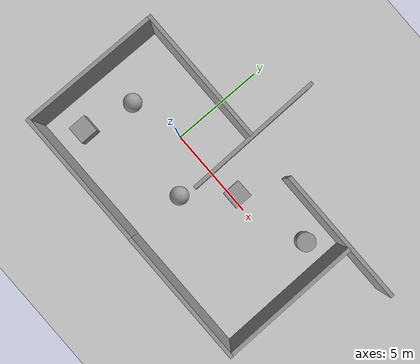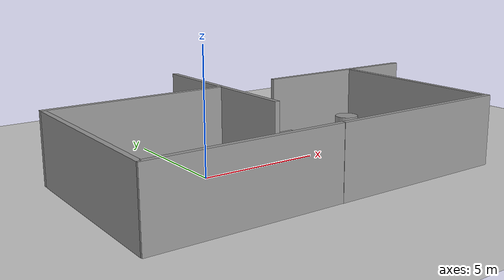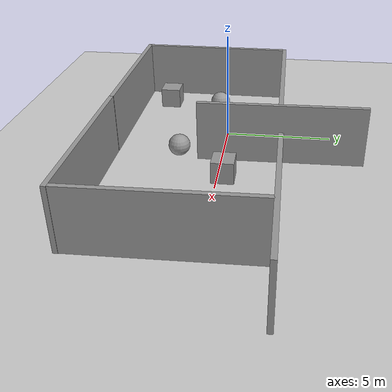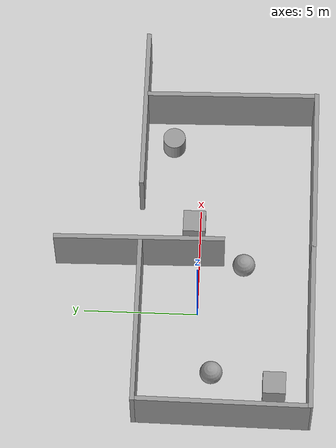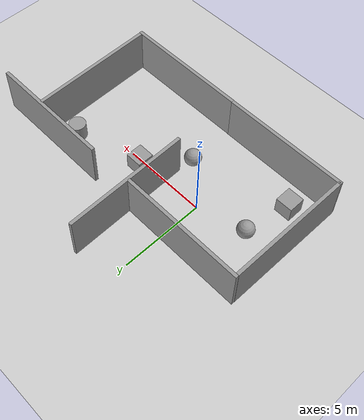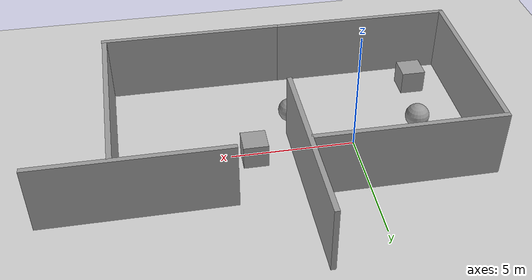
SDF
<sdf version="1.6">
 <world name="default">
  <light name="sun" type="directional">
   <pose>0 0 10 0 -0 0</pose>
   <diffuse>0.8 0.8 0.8 1</diffuse>
   <specular>0.2 0.2 0.2 1</specular>
   <attenuation>
    <range>1000</range>
    <constant>0.9</constant>
    <linear>0.01</linear>
    <quadratic>0.001</quadratic>
   </attenuation>
   <direction>-0.5 0.1 -0.9</direction>
  </light>
  <model name="ground_plane">
   <static>1</static>
   <link name="link">
    <collision name="collision">
     <geometry><plane><normal>0 0 1</normal><size>100 100</size></plane></geometry>
     <surface><friction><ode><mu>100</mu><mu2>50</mu2></ode></friction></surface>
    </collision>
    <visual name="visual">
     <cast_shadows>0</cast_shadows>
     <geometry><plane><normal>0 0 1</normal><size>100 100</size></plane></geometry>
     <material>
      <script><uri>file://media/materials/scripts/gazebo.material</uri><name>Gazebo/Grey</name></script>
     </material>
    </visual>
   </link>
  </model>
  <gravity>0 0 -9.8</gravity>
  <magnetic_field>6e-06 2.3e-05 -4.2e-05</magnetic_field>
  <atmosphere type="adiabatic"/>
  <physics name="default_physics" default="0" type="ode">
   <max_step_size>0.001</max_step_size>
   <real_time_factor>1</real_time_factor>
   <real_time_update_rate>1000</real_time_update_rate>
  </physics>
  <scene><ambient>0.4 0.4 0.4 1</ambient><background>0.7 0.7 0.7 1</background><shadows>1</shadows></scene>
  <spherical_coordinates>
   <surface_model>EARTH_WGS84</surface_model>
   <latitude_deg>0</latitude_deg>
   <longitude_deg>0</longitude_deg>
   <elevation>0</elevation>
   <heading_deg>0</heading_deg>
  </spherical_coordinates>
  <model name="grey_wall">
   <static>1</static>
   <link name="link">
    <pose>0 0 1.4 0 -0 0</pose>
    <collision name="collision"><geometry><box><size>7.5 0.2 2.8</size></box></geometry></collision>
    <visual name="visual">
     <cast_shadows>0</cast_shadows>
     <geometry><box><size>7.5 0.2 2.8</size></box></geometry>
     <material>
      <script>
       <uri>model://grey_wall/materials/scripts</uri>
       <uri>model://grey_wall/materials/textures</uri>
       <name>vrc/grey_wall</name>
      </script>
     </material>
    </visual>
   </link>
   <pose>-1.37581 2.59315 0 0 -0 0</pose>
  </model>
  <model name="grey_wall_0">
   <static>1</static>
   <link name="link">
    <pose>0 0 1.4 0 -0 0</pose>
    <collision name="collision"><geometry><box><size>7.5 0.2 2.8</size></box></geometry></collision>
    <visual name="visual">
     <cast_shadows>0</cast_shadows>
     <geometry><box><size>7.5 0.2 2.8</size></box></geometry>
     <material>
      <script>
       <uri>model://grey_wall/materials/scripts</uri>
       <uri>model://grey_wall/materials/textures</uri>
       <name>vrc/grey_wall</name>
      </script>
     </material>
    </visual>
   </link>
   <pose>-1.43855 -4.99062 0 0 -0 0</pose>
  </model>
  <model name="grey_wall_1">
   <static>1</static>
   <link name="link">
    <pose>0 0 1.4 0 -0 0</pose>
    <collision name="collision"><geometry><box><size>7.5 0.2 2.8</size></box></geometry></collision>
    <visual name="visual">
     <cast_shadows>0</cast_shadows>
     <geometry><box><size>7.5 0.2 2.8</size></box></geometry>
     <material>
      <script>
       <uri>model://grey_wall/materials/scripts</uri>
       <uri>model://grey_wall/materials/textures</uri>
       <name>vrc/grey_wall</name>
      </script>
     </material>
    </visual>
   </link>
   <pose>-5.06769 -1.25192 0 0 0 -1.57997</pose>
  </model>
  <model name="grey_wall_2">
   <static>1</static>
   <link name="link">
    <pose>0 0 1.4 0 -0 0</pose>
    <collision name="collision"><geometry><box><size>7.5 0.2 2.8</size></box></geometry></collision>
    <visual name="visual">
     <cast_shadows>0</cast_shadows>
     <geometry><box><size>7.5 0.2 2.8</size></box></geometry>
     <material>
      <script>
       <uri>model://grey_wall/materials/scripts</uri>
       <uri>model://grey_wall/materials/textures</uri>
       <name>vrc/grey_wall</name>
      </script>
     </material>
    </visual>
   </link>
   <pose>6.02528 -5.00278 0 0 -0 0</pose>
  </model>
  <model name="grey_wall_3">
   <static>1</static>
   <link name="link">
    <pose>0 0 1.4 0 -0 0</pose>
    <collision name="collision"><geometry><box><size>7.5 0.2 2.8</size></box></geometry></collision>
    <visual name="visual">
     <cast_shadows>0</cast_shadows>
     <geometry><box><size>7.5 0.2 2.8</size></box></geometry>
     <material>
      <script>
       <uri>model://grey_wall/materials/scripts</uri>
       <uri>model://grey_wall/materials/textures</uri>
       <name>vrc/grey_wall</name>
      </script>
     </material>
    </visual>
   </link>
   <pose>9.58195 -1.15771 0 0 0 -1.55006</pose>
  </model>
  <model name="grey_wall_4">
   <static>1</static>
   <link name="link">
    <pose>0 0 1.4 0 -0 0</pose>
    <collision name="collision"><geometry><box><size>7.5 0.2 2.8</size></box></geometry></collision>
    <visual name="visual">
     <cast_shadows>0</cast_shadows>
     <geometry><box><size>7.5 0.2 2.8</size></box></geometry>
     <material>
      <script>
       <uri>model://grey_wall/materials/scripts</uri>
       <uri>model://grey_wall/materials/textures</uri>
       <name>vrc/grey_wall</name>
      </script>
     </material>
    </visual>
   </link>
   <pose>2.42532 2.64307 0 0 0 -1.55256</pose>
  </model>
  <model name="grey_wall_5">
   <static>1</static>
   <link name="link">
    <pose>0 0 1.4 0 -0 0</pose>
    <collision name="collision"><geometry><box><size>7.5 0.2 2.8</size></box></geometry></collision>
    <visual name="visual">
     <cast_shadows>0</cast_shadows>
     <geometry><box><size>7.5 0.2 2.8</size></box></geometry>
     <material>
      <script>
       <uri>model://grey_wall/materials/scripts</uri>
       <uri>model://grey_wall/materials/textures</uri>
       <name>vrc/grey_wall</name>
      </script>
     </material>
    </visual>
   </link>
   <pose>8.7974 2.65722 0 0 -0 0</pose>
  </model>
  <model name="unit_box">
   <pose>4.12892 0.280224 0.499995 -1e-05 0 0</pose>
   <link name="link">
    <inertial>
     <mass>1</mass>
     <inertia>
      <ixx>0.166667</ixx>
      <ixy>0</ixy>
      <ixz>0</ixz>
      <iyy>0.166667</iyy>
      <iyz>0</iyz>
      <izz>0.166667</izz>
     </inertia>
    </inertial>
    <collision name="collision"><geometry><box><size>1 1 1</size></box></geometry></collision>
    <visual name="visual">
     <geometry><box><size>1 1 1</size></box></geometry>
     <material>
      <script><name>Gazebo/Grey</name><uri>file://media/materials/scripts/gazebo.material</uri></script>
     </material>
    </visual>
   </link>
  </model>
  <model name="unit_sphere">
   <pose>2.26319 -1.99208 0.5 0 -0 0</pose>
   <link name="link">
    <inertial>
     <mass>1</mass>
     <inertia><ixx>0.1</ixx><ixy>0</ixy><ixz>0</ixz><iyy>0.1</iyy><iyz>0</iyz><izz>0.1</izz></inertia>
    </inertial>
    <collision name="collision"><geometry><sphere><radius>0.5</radius></sphere></geometry></collision>
    <visual name="visual">
     <geometry><sphere><radius>0.5</radius></sphere></geometry>
     <material>
      <script><name>Gazebo/Grey</name><uri>file://media/materials/scripts/gazebo.material</uri></script>
     </material>
    </visual>
   </link>
  </model>
  <model name="unit_cylinder">
   <pose>8.20926 1.3443 0.499998 3e-06 -2e-06 0</pose>
   <link name="link">
    <inertial>
     <mass>1</mass>
     <inertia><ixx>0.145833</ixx><ixy>0</ixy><ixz>0</ixz><iyy>0.145833</iyy><iyz>0</iyz><izz>0.125</izz></inertia>
    </inertial>
    <collision name="collision">
     <geometry><cylinder><radius>0.5</radius><length>1</length></cylinder></geometry>
    </collision>
    <visual name="visual">
     <geometry><cylinder><radius>0.5</radius><length>1</length></cylinder></geometry>
     <material>
      <script><name>Gazebo/Grey</name><uri>file://media/materials/scripts/gazebo.material</uri></script>
     </material>
    </visual>
   </link>
  </model>
  <model name="unit_box_0">
   <pose>-3.42714 -3.46821 0.499995 -1e-05 0 0</pose>
   <link name="link">
    <inertial>
     <mass>1</mass>
     <inertia>
      <ixx>0.166667</ixx>
      <ixy>0</ixy>
      <ixz>0</ixz>
      <iyy>0.166667</iyy>
      <iyz>0</iyz>
      <izz>0.166667</izz>
     </inertia>
    </inertial>
    <collision name="collision"><geometry><box><size>1 1 1</size></box></geometry></collision>
    <visual name="visual">
     <geometry><box><size>1 1 1</size></box></geometry>
     <material>
      <script><name>Gazebo/Grey</name><uri>file://media/materials/scripts/gazebo.material</uri></script>
     </material>
    </visual>
   </link>
  </model>
  <model name="unit_sphere_0">
   <pose>-2.88701 -0.708622 0.5 0 -0 0</pose>
   <link name="link">
    <inertial>
     <mass>1</mass>
     <inertia><ixx>0.1</ixx><ixy>0</ixy><ixz>0</ixz><iyy>0.1</iyy><iyz>0</iyz><izz>0.1</izz></inertia>
    </inertial>
    <collision name="collision"><geometry><sphere><radius>0.5</radius></sphere></geometry></collision>
    <visual name="visual">
     <geometry><sphere><radius>0.5</radius></sphere></geometry>
     <material>
      <script><name>Gazebo/Grey</name><uri>file://media/materials/scripts/gazebo.material</uri></script>
     </material>
    </visual>
   </link>
  </model>
 </world>
</sdf>
